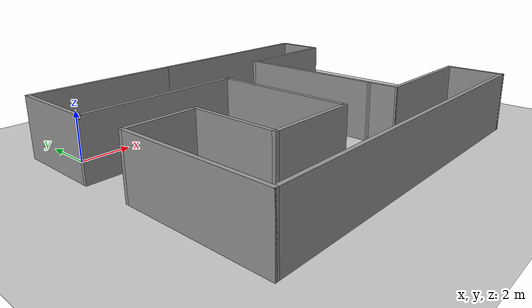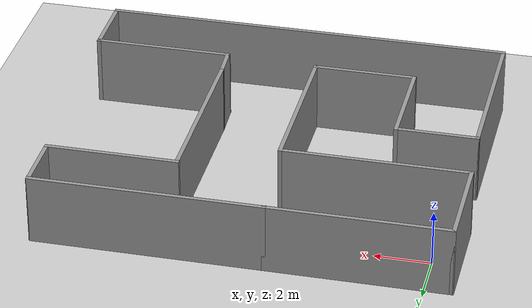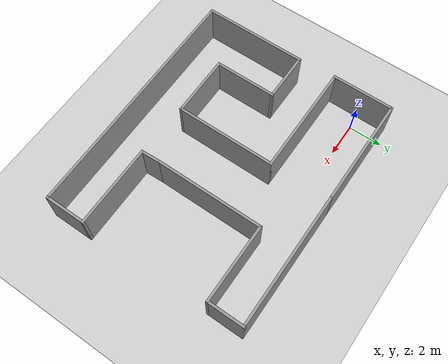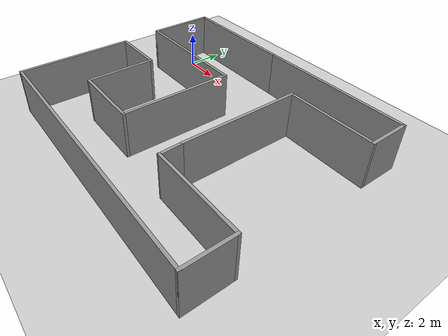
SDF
<sdf version="1.7">
 <world name="lab_world">
  <gravity>0 0 -9.8</gravity>
  <model name="ground_plane">
   <static>1</static>
   <link name="link">
    <collision name="collision">
     <geometry><plane><normal>0 0 1</normal><size>100 100</size></plane></geometry>
     <surface><friction><ode><mu>100</mu><mu2>50</mu2></ode></friction></surface>
    </collision>
    <visual name="visual">
     <cast_shadows>0</cast_shadows>
     <geometry><plane><normal>0 0 1</normal><size>100 100</size></plane></geometry>
     <material>
      <script><uri>file://media/materials/scripts/gazebo.material</uri><name>Gazebo/Grey</name></script>
     </material>
    </visual>
   </link>
  </model>
  <light name="sun" type="directional">
   <pose>0 0 10 0 -0 0</pose>
   <diffuse>0.8 0.8 0.8 1</diffuse>
   <specular>0.2 0.2 0.2 1</specular>
   <attenuation>
    <range>1000</range>
    <constant>0.9</constant>
    <linear>0.01</linear>
    <quadratic>0.001</quadratic>
   </attenuation>
   <direction>-0.5 0.1 -0.9</direction>
   <spot><inner_angle>0</inner_angle><outer_angle>0</outer_angle><falloff>0</falloff></spot>
  </light>
  <magnetic_field>6e-06 2.3e-05 -4.2e-05</magnetic_field>
  <atmosphere type="adiabatic"/>
  <physics type="ode">
   <max_step_size>0.001</max_step_size>
   <real_time_factor>1</real_time_factor>
   <real_time_update_rate>1000</real_time_update_rate>
  </physics>
  <scene><ambient>0.4 0.4 0.4 1</ambient><background>0.7 0.7 0.7 1</background><shadows>1</shadows></scene>
  <spherical_coordinates>
   <surface_model>EARTH_WGS84</surface_model>
   <latitude_deg>0</latitude_deg>
   <longitude_deg>0</longitude_deg>
   <elevation>0</elevation>
   <heading_deg>0</heading_deg>
  </spherical_coordinates>
  <model name="place3">
   <pose>6.44788 -4.37814 0 0 -0 0</pose>
   <link name="Wall_38">
    <collision name="Wall_38_Collision">
     <geometry><box><size>3.75 0.15 2.5</size></box></geometry>
     <pose>0 0 1.25 0 -0 0</pose>
    </collision>
    <visual name="Wall_38_Visual">
     <pose>0 0 1.25 0 -0 0</pose>
     <geometry><box><size>3.75 0.15 2.5</size></box></geometry>
     <material>
      <script><uri>file://media/materials/scripts/gazebo.material</uri><name>Gazebo/Grey</name></script>
      <ambient>1 1 1 1</ambient>
     </material>
     <meta><layer>0</layer></meta>
    </visual>
    <pose>-7.375 4.175 0 0 -0 1.5708</pose>
   </link>
   <link name="Wall_39">
    <collision name="Wall_39_Collision">
     <geometry><box><size>6.5 0.15 2.5</size></box></geometry>
     <pose>0 0 1.25 0 -0 0</pose>
    </collision>
    <visual name="Wall_39_Visual">
     <pose>0 0 1.25 0 -0 0</pose>
     <geometry><box><size>6.5 0.15 2.5</size></box></geometry>
     <material>
      <script><uri>file://media/materials/scripts/gazebo.material</uri><name>Gazebo/Grey</name></script>
      <ambient>1 1 1 1</ambient>
     </material>
     <meta><layer>0</layer></meta>
    </visual>
    <pose>-4.2 5.975 0 0 -0 0</pose>
   </link>
   <link name="Wall_41">
    <collision name="Wall_41_Collision">
     <geometry><box><size>6.75 0.15 2.5</size></box></geometry>
     <pose>0 0 1.25 0 -0 0</pose>
    </collision>
    <visual name="Wall_41_Visual">
     <pose>0 0 1.25 0 -0 0</pose>
     <geometry><box><size>6.75 0.15 2.5</size></box></geometry>
     <material>
      <script><uri>file://media/materials/scripts/gazebo.material</uri><name>Gazebo/Grey</name></script>
      <ambient>1 1 1 1</ambient>
     </material>
     <meta><layer>0</layer></meta>
    </visual>
    <pose>-4.075 2.375 0 0 -0 0</pose>
   </link>
   <link name="Wall_43">
    <collision name="Wall_43_Collision">
     <geometry><box><size>8.25 0.15 2.5</size></box></geometry>
     <pose>0 0 1.25 0 -0 0</pose>
    </collision>
    <visual name="Wall_43_Visual">
     <pose>0 0 1.25 0 -0 0</pose>
     <geometry><box><size>8.25 0.15 2.5</size></box></geometry>
     <material>
      <script><uri>file://media/materials/scripts/gazebo.material</uri><name>Gazebo/Grey</name></script>
      <ambient>1 1 1 1</ambient>
     </material>
     <meta><layer>0</layer></meta>
    </visual>
    <pose>3.025 5.975 0 0 -0 0</pose>
   </link>
   <link name="Wall_44">
    <collision name="Wall_44_Collision">
     <geometry><box><size>2.25 0.15 2.5</size></box></geometry>
     <pose>0 0 1.25 0 -0 0</pose>
    </collision>
    <visual name="Wall_44_Visual">
     <pose>0 0 1.25 0 -0 0</pose>
     <geometry><box><size>2.25 0.15 2.5</size></box></geometry>
     <material>
      <script><uri>file://media/materials/scripts/gazebo.material</uri><name>Gazebo/Grey</name></script>
      <ambient>1 1 1 1</ambient>
     </material>
     <meta><layer>0</layer></meta>
    </visual>
    <pose>7.075 4.925 0 0 -0 -1.5708</pose>
   </link>
   <link name="Wall_45">
    <collision name="Wall_45_Collision">
     <geometry><box><size>4.75 0.15 2.5</size></box></geometry>
     <pose>0 0 1.25 0 -0 0</pose>
    </collision>
    <visual name="Wall_45_Visual">
     <pose>0 0 1.25 0 -0 0</pose>
     <geometry><box><size>4.75 0.15 2.5</size></box></geometry>
     <material>
      <script><uri>file://media/materials/scripts/gazebo.material</uri><name>Gazebo/Grey</name></script>
      <ambient>1 1 1 1</ambient>
     </material>
     <meta><layer>0</layer></meta>
    </visual>
    <pose>4.775 3.875 0 0 -0 3.14159</pose>
   </link>
   <link name="Wall_46">
    <collision name="Wall_46_Collision">
     <geometry><box><size>6.5 0.15 2.5</size></box></geometry>
     <pose>0 0 1.25 0 -0 0</pose>
    </collision>
    <visual name="Wall_46_Visual">
     <pose>0 0 1.25 0 -0 0</pose>
     <geometry><box><size>6.5 0.15 2.5</size></box></geometry>
     <material>
      <script><uri>file://media/materials/scripts/gazebo.material</uri><name>Gazebo/Grey</name></script>
      <ambient>1 1 1 1</ambient>
     </material>
     <meta><layer>0</layer></meta>
    </visual>
    <pose>2.475 0.7 0 0 -0 -1.5708</pose>
   </link>
   <link name="Wall_48">
    <collision name="Wall_48_Collision">
     <geometry><box><size>6 0.15 2.5</size></box></geometry>
     <pose>0 0 1.25 0 -0 0</pose>
    </collision>
    <visual name="Wall_48_Visual">
     <pose>0 0 1.25 0 -0 0</pose>
     <geometry><box><size>6 0.15 2.5</size></box></geometry>
     <material>
      <script><uri>file://media/materials/scripts/gazebo.material</uri><name>Gazebo/Grey</name></script>
      <ambient>1 1 1 1</ambient>
     </material>
     <meta><layer>0</layer></meta>
    </visual>
    <pose>-0.775 -0.55 0 0 -0 -1.5708</pose>
   </link>
   <link name="Wall_49">
    <collision name="Wall_49_Collision">
     <geometry><box><size>3.75 0.15 2.5</size></box></geometry>
     <pose>0 0 1.25 0 -0 0</pose>
    </collision>
    <visual name="Wall_49_Visual">
     <pose>0 0 1.25 0 -0 0</pose>
     <geometry><box><size>3.75 0.15 2.5</size></box></geometry>
     <material>
      <script><uri>file://media/materials/scripts/gazebo.material</uri><name>Gazebo/Grey</name></script>
      <ambient>1 1 1 1</ambient>
     </material>
     <meta><layer>0</layer></meta>
    </visual>
    <pose>-2.575 -3.475 0 0 -0 3.14159</pose>
   </link>
   <link name="Wall_50">
    <collision name="Wall_50_Collision">
     <geometry><box><size>3.75 0.15 2.5</size></box></geometry>
     <pose>0 0 1.25 0 -0 0</pose>
    </collision>
    <visual name="Wall_50_Visual">
     <pose>0 0 1.25 0 -0 0</pose>
     <geometry><box><size>3.75 0.15 2.5</size></box></geometry>
     <material>
      <script><uri>file://media/materials/scripts/gazebo.material</uri><name>Gazebo/Grey</name></script>
      <ambient>1 1 1 1</ambient>
     </material>
     <meta><layer>0</layer></meta>
    </visual>
    <pose>-4.375 -1.675 0 0 -0 1.5708</pose>
   </link>
   <link name="Wall_51">
    <collision name="Wall_51_Collision">
     <geometry><box><size>3 0.15 2.5</size></box></geometry>
     <pose>0 0 1.25 0 -0 0</pose>
    </collision>
    <visual name="Wall_51_Visual">
     <pose>0 0 1.25 0 -0 0</pose>
     <geometry><box><size>3 0.15 2.5</size></box></geometry>
     <material>
      <script><uri>file://media/materials/scripts/gazebo.material</uri><name>Gazebo/Grey</name></script>
      <ambient>1 1 1 1</ambient>
     </material>
     <meta><layer>0</layer></meta>
    </visual>
    <pose>-5.8 0.125 0 0 -0 3.14159</pose>
   </link>
   <link name="Wall_52">
    <collision name="Wall_52_Collision">
     <geometry><box><size>6.25 0.15 2.5</size></box></geometry>
     <pose>0 0 1.25 0 -0 0</pose>
    </collision>
    <visual name="Wall_52_Visual">
     <pose>0 0 1.25 0 -0 0</pose>
     <geometry><box><size>6.25 0.15 2.5</size></box></geometry>
     <material>
      <script><uri>file://media/materials/scripts/gazebo.material</uri><name>Gazebo/Grey</name></script>
      <ambient>1 1 1 1</ambient>
     </material>
     <meta><layer>0</layer></meta>
    </visual>
    <pose>-7.225 -2.925 0 0 -0 -1.5708</pose>
   </link>
   <link name="Wall_53">
    <collision name="Wall_53_Collision">
     <geometry><box><size>14.75 0.15 2.5</size></box></geometry>
     <pose>0 0 1.25 0 -0 0</pose>
    </collision>
    <visual name="Wall_53_Visual">
     <pose>0 0 1.25 0 -0 0</pose>
     <geometry><box><size>14.75 0.15 2.5</size></box></geometry>
     <material>
      <script><uri>file://media/materials/scripts/gazebo.material</uri><name>Gazebo/Grey</name></script>
      <ambient>1 1 1 1</ambient>
     </material>
     <meta><layer>0</layer></meta>
    </visual>
    <pose>0.075 -5.975 0 0 -0 0</pose>
   </link>
   <link name="Wall_54">
    <collision name="Wall_54_Collision">
     <geometry><box><size>2.5 0.15 2.5</size></box></geometry>
     <pose>0 0 1.25 0 -0 0</pose>
    </collision>
    <visual name="Wall_54_Visual">
     <pose>0 0 1.25 0 -0 0</pose>
     <geometry><box><size>2.5 0.15 2.5</size></box></geometry>
     <material>
      <script><uri>file://media/materials/scripts/gazebo.material</uri><name>Gazebo/Grey</name></script>
      <ambient>1 1 1 1</ambient>
     </material>
     <meta><layer>0</layer></meta>
    </visual>
    <pose>7.375 -4.8 0 0 -0 1.5708</pose>
   </link>
   <link name="Wall_55">
    <collision name="Wall_55_Collision">
     <geometry><box><size>5 0.15 2.5</size></box></geometry>
     <pose>0 0 1.25 0 -0 0</pose>
    </collision>
    <visual name="Wall_55_Visual">
     <pose>0 0 1.25 0 -0 0</pose>
     <geometry><box><size>5 0.15 2.5</size></box></geometry>
     <material>
      <script><uri>file://media/materials/scripts/gazebo.material</uri><name>Gazebo/Grey</name></script>
      <ambient>1 1 1 1</ambient>
     </material>
     <meta><layer>0</layer></meta>
    </visual>
    <pose>4.95 -3.625 0 0 -0 3.14159</pose>
   </link>
   <link name="Wall_56">
    <collision name="Wall_56_Collision">
     <geometry><box><size>1.30109 0.15 2.5</size></box></geometry>
     <pose>0 0 1.25 0 -0 0</pose>
    </collision>
    <visual name="Wall_56_Visual">
     <pose>0 0 1.25 0 -0 0</pose>
     <geometry><box><size>1.30109 0.15 2.5</size></box></geometry>
     <material>
      <script><uri>file://media/materials/scripts/gazebo.material</uri><name>Gazebo/Grey</name></script>
      <ambient>1 1 1 1</ambient>
     </material>
     <meta><layer>0</layer></meta>
    </visual>
    <pose>2.5 -3.05 0 0 -0 1.61425</pose>
   </link>
   <static>1</static>
  </model>
 </world>
</sdf>
